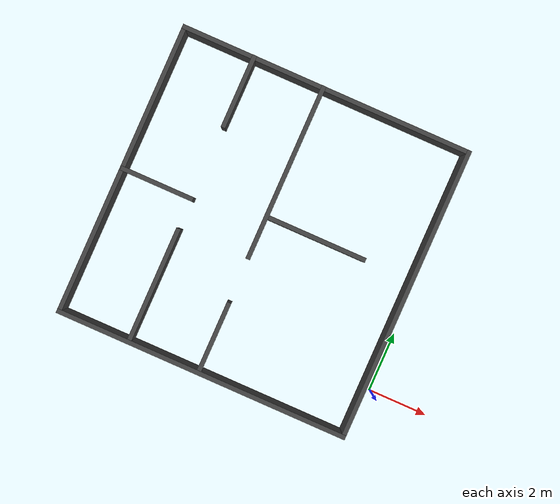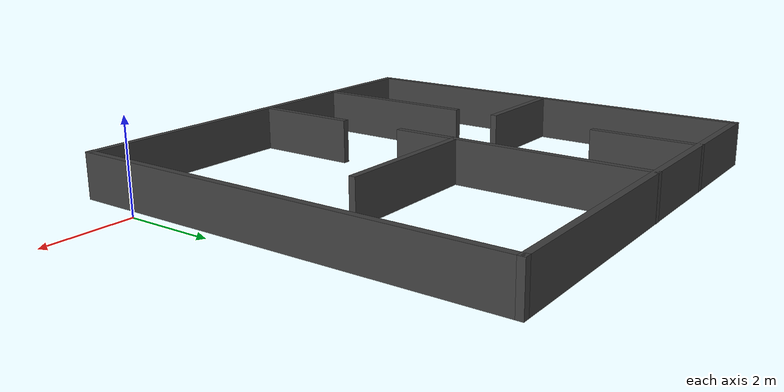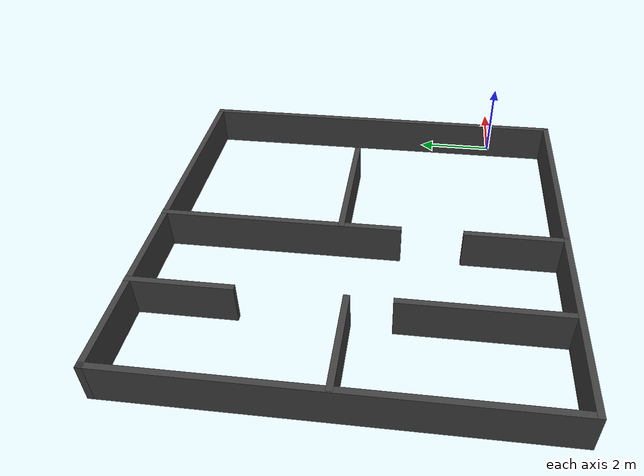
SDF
<?xml version='1.0'?>
<sdf version='1.6'>
  <model name='room_with_walls'>
    <pose >-5.11916 3.33552 0 0 0 0</pose>
    <link name='Wall_1'>
      <collision name='Wall_1_Collision'>
        <geometry>
          <box>
            <size>10 0.15 1.0</size>
          </box>
        </geometry>
        <pose >0 0 0.5 0 -0 0</pose>
      </collision>
      <visual name='Wall_1_Visual'>
        <pose >0 0 0.5 0 -0 0</pose>
        <geometry>
          <box>
            <size>10 0.15 1.0</size>
          </box>
        </geometry>
        <material>
          <ambient>0.25 0.25 0.25 1.0</ambient>
          <diffuse>0.25 0.25 0.25 1.0</diffuse>
          <specular>0.1 0.1 0.1 1.0</specular>
          <emissive>0.0 0.0 0.0 1.0</emissive>
        </material>
        <meta>
          <layer>0</layer>
        </meta>
      </visual>
      <pose >-0.119159 -4.92736 0 0 -0 0</pose>
    </link>
    <link name='Wall_11'>
      <collision name='Wall_11_Collision'>
        <geometry>
          <box>
            <size>2.5 0.15 1.0</size>
          </box>
        </geometry>
        <pose >0 0 0.5 0 -0 0</pose>
      </collision>
      <visual name='Wall_11_Visual'>
        <pose >0 0 0.5 0 -0 0</pose>
        <geometry>
          <box>
            <size>2.5 0.15 1.0</size>
          </box>
        </geometry>
        <material>
          <ambient>0.25 0.25 0.25 1.0</ambient>
          <diffuse>0.25 0.25 0.25 1.0</diffuse>
          <specular>0.1 0.1 0.1 1.0</specular>
          <emissive>0.0 0.0 0.0 1.0</emissive>
        </material>
        <meta>
          <layer>0</layer>
        </meta>
      </visual>
      <pose >-2.64666 3.75236 0 0 -0 -1.5708</pose>
    </link>
    <link name='Wall_16'>
      <collision name='Wall_16_Collision'>
        <geometry>
          <box>
            <size>2.5 0.15 1.0</size>
          </box>
        </geometry>
        <pose >0 0 0.5 0 -0 0</pose>
      </collision>
      <visual name='Wall_16_Visual'>
        <pose >0 0 0.5 0 -0 0</pose>
        <geometry>
          <box>
            <size>2.5 0.15 1.0</size>
          </box>
        </geometry>
        <material>
          <ambient>0.25 0.25 0.25 1.0</ambient>
          <diffuse>0.25 0.25 0.25 1.0</diffuse>
          <specular>0.1 0.1 0.1 1.0</specular>
          <emissive>0.0 0.0 0.0 1.0</emissive>
        </material>
        <meta>
          <layer>0</layer>
        </meta>
      </visual>
      <pose >-3.84066 0.028362 0 0 -0 0</pose>
    </link>
    <link name='Wall_18'>
      <collision name='Wall_18_Collision'>
        <geometry>
          <box>
            <size>4 0.15 1.0</size>
          </box>
        </geometry>
        <pose >0 0 0.5 0 -0 0</pose>
      </collision>
      <visual name='Wall_18_Visual'>
        <pose >0 0 0.5 0 -0 0</pose>
        <geometry>
          <box>
            <size>4 0.15 1.0</size>
          </box>
        </geometry>
        <material>
          <ambient>0.25 0.25 0.25 1.0</ambient>
          <diffuse>0.25 0.25 0.25 1.0</diffuse>
          <specular>0.1 0.1 0.1 1.0</specular>
          <emissive>0.0 0.0 0.0 1.0</emissive>
        </material>
        <meta>
          <layer>0</layer>
        </meta>
      </visual>
      <pose >-2.63516 -2.99164 0 0 -0 1.5708</pose>
    </link>
    <link name='Wall_2'>
      <collision name='Wall_2_Collision'>
        <geometry>
          <box>
            <size>10 0.15 1.0</size>
          </box>
        </geometry>
        <pose >0 0 0.5 0 -0 0</pose>
      </collision>
      <visual name='Wall_2_Visual'>
        <pose >0 0 0.5 0 -0 0</pose>
        <geometry>
          <box>
            <size>10 0.15 1.0</size>
          </box>
        </geometry>
        <material>
          <ambient>0.25 0.25 0.25 1.0</ambient>
          <diffuse>0.25 0.25 0.25 1.0</diffuse>
          <specular>0.1 0.1 0.1 1.0</specular>
          <emissive>0.0 0.0 0.0 1.0</emissive>
        </material>
        <meta>
          <layer>0</layer>
        </meta>
      </visual>
      <pose >4.80584 -0.002362 0 0 -0 1.5708</pose>
    </link>
    <link name='Wall_24'>
      <collision name='Wall_24_Collision'>
        <geometry>
          <box>
            <size>6 0.15 1.0</size>
          </box>
        </geometry>
        <pose >0 0 0.5 0 -0 0</pose>
      </collision>
      <visual name='Wall_24_Visual'>
        <pose >0 0 0.5 0 -0 0</pose>
        <geometry>
          <box>
            <size>6 0.15 1.0</size>
          </box>
        </geometry>
        <material>
          <ambient>0.25 0.25 0.25 1.0</ambient>
          <diffuse>0.25 0.25 0.25 1.0</diffuse>
          <specular>0.1 0.1 0.1 1.0</specular>
          <emissive>0.0 0.0 0.0 1.0</emissive>
        </material>
        <meta>
          <layer>0</layer>
        </meta>
      </visual>
      <pose >-0.243157 2.00236 0 0 -0 -1.5708</pose>
    </link>
    <link name='Wall_28'>
      <collision name='Wall_28_Collision'>
        <geometry>
          <box>
            <size>2.5 0.15 1.0</size>
          </box>
        </geometry>
        <pose >0 0 0.5 0 -0 0</pose>
      </collision>
      <visual name='Wall_28_Visual'>
        <pose >0 0 0.5 0 -0 0</pose>
        <geometry>
          <box>
            <size>2.5 0.15 1.0</size>
          </box>
        </geometry>
        <material>
          <ambient>0.25 0.25 0.25 1.0</ambient>
          <diffuse>0.25 0.25 0.25 1.0</diffuse>
          <specular>0.1 0.1 0.1 1.0</specular>
          <emissive>0.0 0.0 0.0 1.0</emissive>
        </material>
        <meta>
          <layer>0</layer>
        </meta>
      </visual>
      <pose >-0.220157 -3.74164 0 0 -0 1.5708</pose>
    </link>
    <link name='Wall_3'>
      <collision name='Wall_3_Collision'>
        <geometry>
          <box>
            <size>10 0.15 1.0</size>
          </box>
        </geometry>
        <pose >0 0 0.5 0 -0 0</pose>
      </collision>
      <visual name='Wall_3_Visual'>
        <pose >0 0 0.5 0 -0 0</pose>
        <geometry>
          <box>
            <size>10 0.15 1.0</size>
          </box>
        </geometry>
        <material>
          <ambient>0.25 0.25 0.25 1.0</ambient>
          <diffuse>0.25 0.25 0.25 1.0</diffuse>
          <specular>0.1 0.1 0.1 1.0</specular>
          <emissive>0.0 0.0 0.0 1.0</emissive>
        </material>
        <meta>
          <layer>0</layer>
        </meta>
      </visual>
      <pose >-0.119159 4.92264 0 0 -0 3.14159</pose>
    </link>
    <link name='Wall_36'>
      <collision name='Wall_36_Collision'>
        <geometry>
          <box>
            <size>3.5 0.15 1.0</size>
          </box>
        </geometry>
        <pose >0 0 0.5 0 -0 0</pose>
      </collision>
      <visual name='Wall_36_Visual'>
        <pose >0 0 0.5 0 -0 0</pose>
        <geometry>
          <box>
            <size>3.5 0.15 1.0</size>
          </box>
        </geometry>
        <material>
          <ambient>0.25 0.25 0.25 1.0</ambient>
          <diffuse>0.25 0.25 0.25 1.0</diffuse>
          <specular>0.1 0.1 0.1 1.0</specular>
          <emissive>0.0 0.0 0.0 1.0</emissive>
        </material>
        <meta>
          <layer>0</layer>
        </meta>
      </visual>
      <pose >1.44334 0.476862 0 0 -0 0</pose>
    </link>
    <link name='Wall_4'>
      <collision name='Wall_4_Collision'>
        <geometry>
          <box>
            <size>10 0.15 1.0</size>
          </box>
        </geometry>
        <pose >0 0 0.5 0 -0 0</pose>
      </collision>
      <visual name='Wall_4_Visual'>
        <pose >0 0 0.5 0 -0 0</pose>
        <geometry>
          <box>
            <size>10 0.15 1.0</size>
          </box>
        </geometry>
        <material>
          <ambient>0.25 0.25 0.25 1.0</ambient>
          <diffuse>0.25 0.25 0.25 1.0</diffuse>
          <specular>0.1 0.1 0.1 1.0</specular>
          <emissive>0.0 0.0 0.0 1.0</emissive>
        </material>
        <meta>
          <layer>0</layer>
        </meta>
      </visual>
      <pose >-5.04416 -0.002362 0 0 -0 -1.5708</pose>
    </link>
    <static>1</static>
  </model>
</sdf>
